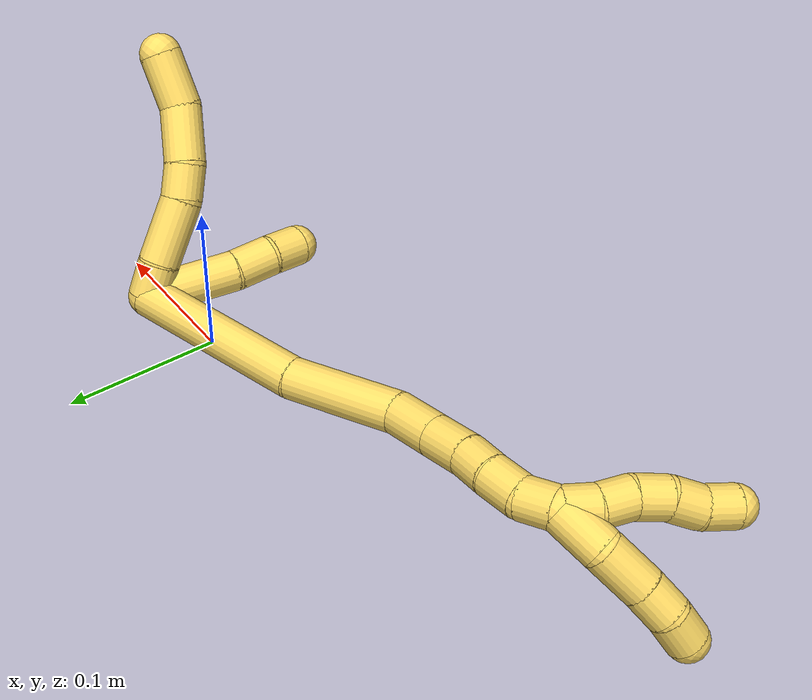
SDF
<sdf version="1.7">
 <world name="default">
  <model name="photoneo_s_sensor">
   <static>1</static>
   <pose>0 0 2 1.57079 1.57079 3.14159</pose>
   <link name="link">
    <inertial><mass>0.1</mass></inertial>
    <sensor name="sensor" type="depth">
     <update_rate>30</update_rate>
     <camera>
      <horizontal_fov>1.22</horizontal_fov>
      <image><width>1920</width><height>1200</height><format>B8G8R8</format></image>
      <clip><near>0.1</near><far>4</far></clip>
      <depth_camera><output>points</output></depth_camera>
     </camera>
     <plugin name="camera_plugin" filename="libgazebo_ros_depth_camera.so">
      <baseline>0.2</baseline>
      <alwaysOn>1</alwaysOn>
      <updateRate>0.0</updateRate>
      <cameraName>camera_ir</cameraName>
      <imageTopicName>/camera/color/image_raw</imageTopicName>
      <cameraInfoTopicName>/camera/color/camera_info</cameraInfoTopicName>
      <depthImageTopicName>/camera/depth/image_raw</depthImageTopicName>
      <depthImageCameraInfoTopicName>/camera/depth/camera_info</depthImageCameraInfoTopicName>
      <pointCloudTopicName>/camera/depth/points</pointCloudTopicName>
      <frameName>fr_optical</frameName>
      <pointCloudCutoff>0.1</pointCloudCutoff>
      <pointCloudCutoffMax>2.0</pointCloudCutoffMax>
      <distortionK1>0</distortionK1>
      <distortionK2>0</distortionK2>
      <distortionK3>0</distortionK3>
      <distortionT1>0</distortionT1>
      <distortionT2>0</distortionT2>
      <CxPrime>0</CxPrime>
      <Cx>0</Cx>
      <Cy>0</Cy>
      <focalLength>0</focalLength>
      <hackBaseline>0</hackBaseline>
     </plugin>
    </sensor>
   </link>
  </model>
  <model name="bin">
   <static>1</static>
   <link name="bottom">
    <collision name="collision-bottom">
     <pose>0 0 -0.01 0 -0 0</pose>
     <geometry><box><size>0.8 0.6 0.02</size></box></geometry>
     <surface>
      <friction><ode><mu>100</mu><mu2>100</mu2></ode></friction>
      <contact><collide_bitmask>65535</collide_bitmask></contact>
     </surface>
    </collision>
   </link>
   <link name="west_wall">
    <collision name="collision-west_wall">
     <pose>-0.41 0 0.1 0 -0 0</pose>
     <geometry><box><size>0.02 0.6 0.2</size></box></geometry>
     <surface>
      <friction><ode><mu>100</mu><mu2>100</mu2></ode></friction>
      <contact><collide_bitmask>65535</collide_bitmask></contact>
     </surface>
    </collision>
   </link>
   <link name="east_wall">
    <collision name="collision-east_wall">
     <pose>0.41 0 0.1 0 -0 0</pose>
     <geometry><box><size>0.02 0.6 0.2</size></box></geometry>
     <surface>
      <friction><ode><mu>100</mu><mu2>100</mu2></ode></friction>
      <contact><collide_bitmask>65535</collide_bitmask></contact>
     </surface>
    </collision>
   </link>
   <link name="south_wall">
    <collision name="collision-south_wall">
     <pose>0 -0.31 0.1 0 -0 0</pose>
     <geometry><box><size>0.8 0.02 0.2</size></box></geometry>
     <surface>
      <friction><ode><mu>100</mu><mu2>100</mu2></ode></friction>
      <contact><collide_bitmask>65535</collide_bitmask></contact>
     </surface>
    </collision>
   </link>
   <link name="north_wall">
    <collision name="collision-north_wall">
     <pose>0 0.31 0.1 0 -0 0</pose>
     <geometry><box><size>0.8 0.02 0.2</size></box></geometry>
     <surface>
      <friction><ode><mu>100</mu><mu2>100</mu2></ode></friction>
      <contact><collide_bitmask>65535</collide_bitmask></contact>
     </surface>
    </collision>
   </link>
  </model>
  <model name="5">
   <static>0</static>
   <link name="5">
    <collision name="collision-cylinder-e_1_2_8">
     <pose>0.001269 0.010285 -0.002457 -1.80531 0.119422 -0.151205</pose>
     <geometry><cylinder><radius>0.0125</radius><length>0.021301</length></cylinder></geometry>
     <surface>
      <friction><ode><mu>1.16</mu><mu2>1.16</mu2><slip1>0</slip1><slip2>0</slip2></ode></friction>
      <contact><ode><kp>1e+06</kp><kd>1</kd><max_vel>0</max_vel><min_depth>0.001</min_depth></ode></contact>
     </surface>
    </collision>
    <visual name="visual-cylinder-e_1_2_8">
     <pose>0.001269 0.010285 -0.002457 -1.80531 0.119422 -0.151205</pose>
     <geometry><cylinder><radius>0.0125</radius><length>0.021301</length></cylinder></geometry>
     <material><ambient>1 0.858824 0.4 1</ambient></material>
    </visual>
    <collision name="collision-cylinder-e_2_8_9">
     <pose>0.007704 0.039444 -0.009522 -1.81024 0.259909 -0.329845</pose>
     <geometry><cylinder><radius>0.0125</radius><length>0.040206</length></cylinder></geometry>
     <surface>
      <friction><ode><mu>1.16</mu><mu2>1.16</mu2><slip1>0</slip1><slip2>0</slip2></ode></friction>
      <contact><ode><kp>1e+06</kp><kd>1</kd><max_vel>0</max_vel><min_depth>0.001</min_depth></ode></contact>
     </surface>
    </collision>
    <visual name="visual-cylinder-e_2_8_9">
     <pose>0.007704 0.039444 -0.009522 -1.81024 0.259909 -0.329845</pose>
     <geometry><cylinder><radius>0.0125</radius><length>0.040206</length></cylinder></geometry>
     <material><ambient>1 0.858824 0.4 1</ambient></material>
    </visual>
    <collision name="collision-cylinder-e_3_9_10">
     <pose>0.015388 0.067376 -0.019039 -2.06747 0.239664 -0.399052</pose>
     <geometry><cylinder><radius>0.0125</radius><length>0.021213</length></cylinder></geometry>
     <surface>
      <friction><ode><mu>1.16</mu><mu2>1.16</mu2><slip1>0</slip1><slip2>0</slip2></ode></friction>
      <contact><ode><kp>1e+06</kp><kd>1</kd><max_vel>0</max_vel><min_depth>0.001</min_depth></ode></contact>
     </surface>
    </collision>
    <visual name="visual-cylinder-e_3_9_10">
     <pose>0.015388 0.067376 -0.019039 -2.06747 0.239664 -0.399052</pose>
     <geometry><cylinder><radius>0.0125</radius><length>0.021213</length></cylinder></geometry>
     <material><ambient>1 0.858824 0.4 1</ambient></material>
    </visual>
    <collision name="collision-cylinder-e_4_10_11">
     <pose>0.02266 0.088641 -0.03498 -2.30564 0.281279 -0.617146</pose>
     <geometry><cylinder><radius>0.0125</radius><length>0.034252</length></cylinder></geometry>
     <surface>
      <friction><ode><mu>1.16</mu><mu2>1.16</mu2><slip1>0</slip1><slip2>0</slip2></ode></friction>
      <contact><ode><kp>1e+06</kp><kd>1</kd><max_vel>0</max_vel><min_depth>0.001</min_depth></ode></contact>
     </surface>
    </collision>
    <visual name="visual-cylinder-e_4_10_11">
     <pose>0.02266 0.088641 -0.03498 -2.30564 0.281279 -0.617146</pose>
     <geometry><cylinder><radius>0.0125</radius><length>0.034252</length></cylinder></geometry>
     <material><ambient>1 0.858824 0.4 1</ambient></material>
    </visual>
    <collision name="collision-cylinder-e_5_11_6">
     <pose>0.027082 0.111149 -0.058915 -2.46794 -0.020086 0.057346</pose>
     <geometry><cylinder><radius>0.0125</radius><length>0.033028</length></cylinder></geometry>
     <surface>
      <friction><ode><mu>1.16</mu><mu2>1.16</mu2><slip1>0</slip1><slip2>0</slip2></ode></friction>
      <contact><ode><kp>1e+06</kp><kd>1</kd><max_vel>0</max_vel><min_depth>0.001</min_depth></ode></contact>
     </surface>
    </collision>
    <visual name="visual-cylinder-e_5_11_6">
     <pose>0.027082 0.111149 -0.058915 -2.46794 -0.020086 0.057346</pose>
     <geometry><cylinder><radius>0.0125</radius><length>0.033028</length></cylinder></geometry>
     <material><ambient>1 0.858824 0.4 1</ambient></material>
    </visual>
    <collision name="collision-cylinder-e_1_2_12">
     <pose>0.018153 0.014587 0.01432 -0.794636 0.726171 -0.316203</pose>
     <geometry><cylinder><radius>0.0125</radius><length>0.054677</length></cylinder></geometry>
     <surface>
      <friction><ode><mu>1.16</mu><mu2>1.16</mu2><slip1>0</slip1><slip2>0</slip2></ode></friction>
      <contact><ode><kp>1e+06</kp><kd>1</kd><max_vel>0</max_vel><min_depth>0.001</min_depth></ode></contact>
     </surface>
    </collision>
    <visual name="visual-cylinder-e_1_2_12">
     <pose>0.018153 0.014587 0.01432 -0.794636 0.726171 -0.316203</pose>
     <geometry><cylinder><radius>0.0125</radius><length>0.054677</length></cylinder></geometry>
     <material><ambient>1 0.858824 0.4 1</ambient></material>
    </visual>
    <collision name="collision-cylinder-e_2_12_13">
     <pose>0.045388 0.035912 0.033442 -0.951608 0.831938 -0.447627</pose>
     <geometry><cylinder><radius>0.0125</radius><length>0.024572</length></cylinder></geometry>
     <surface>
      <friction><ode><mu>1.16</mu><mu2>1.16</mu2><slip1>0</slip1><slip2>0</slip2></ode></friction>
      <contact><ode><kp>1e+06</kp><kd>1</kd><max_vel>0</max_vel><min_depth>0.001</min_depth></ode></contact>
     </surface>
    </collision>
    <visual name="visual-cylinder-e_2_12_13">
     <pose>0.045388 0.035912 0.033442 -0.951608 0.831938 -0.447627</pose>
     <geometry><cylinder><radius>0.0125</radius><length>0.024572</length></cylinder></geometry>
     <material><ambient>1 0.858824 0.4 1</ambient></material>
    </visual>
    <collision name="collision-cylinder-e_3_13_5">
     <pose>0.063331 0.046724 0.041786 -0.855082 1.02365 -0.501169</pose>
     <geometry><cylinder><radius>0.0125</radius><length>0.020751</length></cylinder></geometry>
     <surface>
      <friction><ode><mu>1.16</mu><mu2>1.16</mu2><slip1>0</slip1><slip2>0</slip2></ode></friction>
      <contact><ode><kp>1e+06</kp><kd>1</kd><max_vel>0</max_vel><min_depth>0.001</min_depth></ode></contact>
     </surface>
    </collision>
    <visual name="visual-cylinder-e_3_13_5">
     <pose>0.063331 0.046724 0.041786 -0.855082 1.02365 -0.501169</pose>
     <geometry><cylinder><radius>0.0125</radius><length>0.020751</length></cylinder></geometry>
     <material><ambient>1 0.858824 0.4 1</ambient></material>
    </visual>
    <collision name="collision-cylinder-e_1_2_14">
     <pose>-0.011848 0.011912 0.053375 -0.21958 -0.213343 0.023606</pose>
     <geometry><cylinder><radius>0.0125</radius><length>0.111913</length></cylinder></geometry>
     <surface>
      <friction><ode><mu>1.16</mu><mu2>1.16</mu2><slip1>0</slip1><slip2>0</slip2></ode></friction>
      <contact><ode><kp>1e+06</kp><kd>1</kd><max_vel>0</max_vel><min_depth>0.001</min_depth></ode></contact>
     </surface>
    </collision>
    <visual name="visual-cylinder-e_1_2_14">
     <pose>-0.011848 0.011912 0.053375 -0.21958 -0.213343 0.023606</pose>
     <geometry><cylinder><radius>0.0125</radius><length>0.111913</length></cylinder></geometry>
     <material><ambient>1 0.858824 0.4 1</ambient></material>
    </visual>
    <collision name="collision-cylinder-e_2_14_15">
     <pose>-0.028131 0.036538 0.138499 -0.380902 -0.12899 0.024901</pose>
     <geometry><cylinder><radius>0.0125</radius><length>0.068974</length></cylinder></geometry>
     <surface>
      <friction><ode><mu>1.16</mu><mu2>1.16</mu2><slip1>0</slip1><slip2>0</slip2></ode></friction>
      <contact><ode><kp>1e+06</kp><kd>1</kd><max_vel>0</max_vel><min_depth>0.001</min_depth></ode></contact>
     </surface>
    </collision>
    <visual name="visual-cylinder-e_2_14_15">
     <pose>-0.028131 0.036538 0.138499 -0.380902 -0.12899 0.024901</pose>
     <geometry><cylinder><radius>0.0125</radius><length>0.068974</length></cylinder></geometry>
     <material><ambient>1 0.858824 0.4 1</ambient></material>
    </visual>
    <collision name="collision-cylinder-e_3_15_16">
     <pose>-0.038809 0.053254 0.183251 -0.298541 -0.43014 0.065681</pose>
     <geometry><cylinder><radius>0.0125</radius><length>0.029936</length></cylinder></geometry>
     <surface>
      <friction><ode><mu>1.16</mu><mu2>1.16</mu2><slip1>0</slip1><slip2>0</slip2></ode></friction>
      <contact><ode><kp>1e+06</kp><kd>1</kd><max_vel>0</max_vel><min_depth>0.001</min_depth></ode></contact>
     </surface>
    </collision>
    <visual name="visual-cylinder-e_3_15_16">
     <pose>-0.038809 0.053254 0.183251 -0.298541 -0.43014 0.065681</pose>
     <geometry><cylinder><radius>0.0125</radius><length>0.029936</length></cylinder></geometry>
     <material><ambient>1 0.858824 0.4 1</ambient></material>
    </visual>
    <collision name="collision-cylinder-e_4_16_17">
     <pose>-0.050734 0.060919 0.206933 -0.330442 -0.466318 0.079153</pose>
     <geometry><cylinder><radius>0.0125</radius><length>0.02528</length></cylinder></geometry>
     <surface>
      <friction><ode><mu>1.16</mu><mu2>1.16</mu2><slip1>0</slip1><slip2>0</slip2></ode></friction>
      <contact><ode><kp>1e+06</kp><kd>1</kd><max_vel>0</max_vel><min_depth>0.001</min_depth></ode></contact>
     </surface>
    </collision>
    <visual name="visual-cylinder-e_4_16_17">
     <pose>-0.050734 0.060919 0.206933 -0.330442 -0.466318 0.079153</pose>
     <geometry><cylinder><radius>0.0125</radius><length>0.02528</length></cylinder></geometry>
     <material><ambient>1 0.858824 0.4 1</ambient></material>
    </visual>
    <collision name="collision-cylinder-e_5_17_18">
     <pose>-0.061793 0.066561 0.22599 -0.231885 -0.558281 0.066738</pose>
     <geometry><cylinder><radius>0.0125</radius><length>0.020298</length></cylinder></geometry>
     <surface>
      <friction><ode><mu>1.16</mu><mu2>1.16</mu2><slip1>0</slip1><slip2>0</slip2></ode></friction>
      <contact><ode><kp>1e+06</kp><kd>1</kd><max_vel>0</max_vel><min_depth>0.001</min_depth></ode></contact>
     </surface>
    </collision>
    <visual name="visual-cylinder-e_5_17_18">
     <pose>-0.061793 0.066561 0.22599 -0.231885 -0.558281 0.066738</pose>
     <geometry><cylinder><radius>0.0125</radius><length>0.020298</length></cylinder></geometry>
     <material><ambient>1 0.858824 0.4 1</ambient></material>
    </visual>
    <collision name="collision-cylinder-e_6_18_19">
     <pose>-0.071949 0.070747 0.244395 -0.21677 -0.435669 0.048161</pose>
     <geometry><cylinder><radius>0.0125</radius><length>0.022651</length></cylinder></geometry>
     <surface>
      <friction><ode><mu>1.16</mu><mu2>1.16</mu2><slip1>0</slip1><slip2>0</slip2></ode></friction>
      <contact><ode><kp>1e+06</kp><kd>1</kd><max_vel>0</max_vel><min_depth>0.001</min_depth></ode></contact>
     </surface>
    </collision>
    <visual name="visual-cylinder-e_6_18_19">
     <pose>-0.071949 0.070747 0.244395 -0.21677 -0.435669 0.048161</pose>
     <geometry><cylinder><radius>0.0125</radius><length>0.022651</length></cylinder></geometry>
     <material><ambient>1 0.858824 0.4 1</ambient></material>
    </visual>
    <collision name="collision-cylinder-e_7_19_1">
     <pose>-0.07872 0.077411 0.26369 -0.448207 -0.191367 0.043745</pose>
     <geometry><cylinder><radius>0.0125</radius><length>0.020948</length></cylinder></geometry>
     <surface>
      <friction><ode><mu>1.16</mu><mu2>1.16</mu2><slip1>0</slip1><slip2>0</slip2></ode></friction>
      <contact><ode><kp>1e+06</kp><kd>1</kd><max_vel>0</max_vel><min_depth>0.001</min_depth></ode></contact>
     </surface>
    </collision>
    <visual name="visual-cylinder-e_7_19_1">
     <pose>-0.07872 0.077411 0.26369 -0.448207 -0.191367 0.043745</pose>
     <geometry><cylinder><radius>0.0125</radius><length>0.020948</length></cylinder></geometry>
     <material><ambient>1 0.858824 0.4 1</ambient></material>
    </visual>
    <collision name="collision-cylinder-e_1_1_20">
     <pose>-0.080949 0.07979 0.287339 0.143469 -0.016248 -0.001168</pose>
     <geometry><cylinder><radius>0.0125</radius><length>0.029067</length></cylinder></geometry>
     <surface>
      <friction><ode><mu>1.16</mu><mu2>1.16</mu2><slip1>0</slip1><slip2>0</slip2></ode></friction>
      <contact><ode><kp>1e+06</kp><kd>1</kd><max_vel>0</max_vel><min_depth>0.001</min_depth></ode></contact>
     </surface>
    </collision>
    <visual name="visual-cylinder-e_1_1_20">
     <pose>-0.080949 0.07979 0.287339 0.143469 -0.016248 -0.001168</pose>
     <geometry><cylinder><radius>0.0125</radius><length>0.029067</length></cylinder></geometry>
     <material><ambient>1 0.858824 0.4 1</ambient></material>
    </visual>
    <collision name="collision-cylinder-e_2_20_21">
     <pose>-0.077156 0.073623 0.315664 0.2853 0.270471 0.03908</pose>
     <geometry><cylinder><radius>0.0125</radius><length>0.030155</length></cylinder></geometry>
     <surface>
      <friction><ode><mu>1.16</mu><mu2>1.16</mu2><slip1>0</slip1><slip2>0</slip2></ode></friction>
      <contact><ode><kp>1e+06</kp><kd>1</kd><max_vel>0</max_vel><min_depth>0.001</min_depth></ode></contact>
     </surface>
    </collision>
    <visual name="visual-cylinder-e_2_20_21">
     <pose>-0.077156 0.073623 0.315664 0.2853 0.270471 0.03908</pose>
     <geometry><cylinder><radius>0.0125</radius><length>0.030155</length></cylinder></geometry>
     <material><ambient>1 0.858824 0.4 1</ambient></material>
    </visual>
    <collision name="collision-cylinder-e_3_21_22">
     <pose>-0.070717 0.066265 0.338846 0.339986 0.241165 0.041592</pose>
     <geometry><cylinder><radius>0.0125</radius><length>0.020188</length></cylinder></geometry>
     <surface>
      <friction><ode><mu>1.16</mu><mu2>1.16</mu2><slip1>0</slip1><slip2>0</slip2></ode></friction>
      <contact><ode><kp>1e+06</kp><kd>1</kd><max_vel>0</max_vel><min_depth>0.001</min_depth></ode></contact>
     </surface>
    </collision>
    <visual name="visual-cylinder-e_3_21_22">
     <pose>-0.070717 0.066265 0.338846 0.339986 0.241165 0.041592</pose>
     <geometry><cylinder><radius>0.0125</radius><length>0.020188</length></cylinder></geometry>
     <material><ambient>1 0.858824 0.4 1</ambient></material>
    </visual>
    <collision name="collision-cylinder-e_4_22_4">
     <pose>-0.06415 0.058058 0.356107 0.551939 0.415542 0.119261</pose>
     <geometry><cylinder><radius>0.0125</radius><length>0.02059</length></cylinder></geometry>
     <surface>
      <friction><ode><mu>1.16</mu><mu2>1.16</mu2><slip1>0</slip1><slip2>0</slip2></ode></friction>
      <contact><ode><kp>1e+06</kp><kd>1</kd><max_vel>0</max_vel><min_depth>0.001</min_depth></ode></contact>
     </surface>
    </collision>
    <visual name="visual-cylinder-e_4_22_4">
     <pose>-0.06415 0.058058 0.356107 0.551939 0.415542 0.119261</pose>
     <geometry><cylinder><radius>0.0125</radius><length>0.02059</length></cylinder></geometry>
     <material><ambient>1 0.858824 0.4 1</ambient></material>
    </visual>
    <collision name="collision-cylinder-e_1_1_23">
     <pose>-0.075356 0.085961 0.280342 -0.506112 0.56534 -0.149938</pose>
     <geometry><cylinder><radius>0.0125</radius><length>0.02</length></cylinder></geometry>
     <surface>
      <friction><ode><mu>1.16</mu><mu2>1.16</mu2><slip1>0</slip1><slip2>0</slip2></ode></friction>
      <contact><ode><kp>1e+06</kp><kd>1</kd><max_vel>0</max_vel><min_depth>0.001</min_depth></ode></contact>
     </surface>
    </collision>
    <visual name="visual-cylinder-e_1_1_23">
     <pose>-0.075356 0.085961 0.280342 -0.506112 0.56534 -0.149938</pose>
     <geometry><cylinder><radius>0.0125</radius><length>0.02</length></cylinder></geometry>
     <material><ambient>1 0.858824 0.4 1</ambient></material>
    </visual>
    <collision name="collision-cylinder-e_2_23_24">
     <pose>-0.063335 0.094802 0.293478 -0.690149 0.729335 -0.272735</pose>
     <geometry><cylinder><radius>0.0125</radius><length>0.02</length></cylinder></geometry>
     <surface>
      <friction><ode><mu>1.16</mu><mu2>1.16</mu2><slip1>0</slip1><slip2>0</slip2></ode></friction>
      <contact><ode><kp>1e+06</kp><kd>1</kd><max_vel>0</max_vel><min_depth>0.001</min_depth></ode></contact>
     </surface>
    </collision>
    <visual name="visual-cylinder-e_2_23_24">
     <pose>-0.063335 0.094802 0.293478 -0.690149 0.729335 -0.272735</pose>
     <geometry><cylinder><radius>0.0125</radius><length>0.02</length></cylinder></geometry>
     <material><ambient>1 0.858824 0.4 1</ambient></material>
    </visual>
    <collision name="collision-cylinder-e_3_24_25">
     <pose>-0.0511 0.102719 0.306903 -0.391774 0.59092 -0.120646</pose>
     <geometry><cylinder><radius>0.0125</radius><length>0.02</length></cylinder></geometry>
     <surface>
      <friction><ode><mu>1.16</mu><mu2>1.16</mu2><slip1>0</slip1><slip2>0</slip2></ode></friction>
      <contact><ode><kp>1e+06</kp><kd>1</kd><max_vel>0</max_vel><min_depth>0.001</min_depth></ode></contact>
     </surface>
    </collision>
    <visual name="visual-cylinder-e_3_24_25">
     <pose>-0.0511 0.102719 0.306903 -0.391774 0.59092 -0.120646</pose>
     <geometry><cylinder><radius>0.0125</radius><length>0.02</length></cylinder></geometry>
     <material><ambient>1 0.858824 0.4 1</ambient></material>
    </visual>
    <collision name="collision-cylinder-e_4_25_26">
     <pose>-0.040177 0.106645 0.322992 -0.089508 0.564683 -0.025981</pose>
     <geometry><cylinder><radius>0.0125</radius><length>0.02</length></cylinder></geometry>
     <surface>
      <friction><ode><mu>1.16</mu><mu2>1.16</mu2><slip1>0</slip1><slip2>0</slip2></ode></friction>
      <contact><ode><kp>1e+06</kp><kd>1</kd><max_vel>0</max_vel><min_depth>0.001</min_depth></ode></contact>
     </surface>
    </collision>
    <visual name="visual-cylinder-e_4_25_26">
     <pose>-0.040177 0.106645 0.322992 -0.089508 0.564683 -0.025981</pose>
     <geometry><cylinder><radius>0.0125</radius><length>0.02</length></cylinder></geometry>
     <material><ambient>1 0.858824 0.4 1</ambient></material>
    </visual>
    <collision name="collision-cylinder-e_5_26_3">
     <pose>-0.028956 0.110816 0.338746 -0.435487 0.627294 -0.143282</pose>
     <geometry><cylinder><radius>0.0125</radius><length>0.02</length></cylinder></geometry>
     <surface>
      <friction><ode><mu>1.16</mu><mu2>1.16</mu2><slip1>0</slip1><slip2>0</slip2></ode></friction>
      <contact><ode><kp>1e+06</kp><kd>1</kd><max_vel>0</max_vel><min_depth>0.001</min_depth></ode></contact>
     </surface>
    </collision>
    <visual name="visual-cylinder-e_5_26_3">
     <pose>-0.028956 0.110816 0.338746 -0.435487 0.627294 -0.143282</pose>
     <geometry><cylinder><radius>0.0125</radius><length>0.02</length></cylinder></geometry>
     <material><ambient>1 0.858824 0.4 1</ambient></material>
    </visual>
    <collision name="collision-sphere-3">
     <pose>-0.023086 0.114231 0.346086 0 -0 0</pose>
     <geometry><sphere><radius>0.0125</radius></sphere></geometry>
     <surface>
      <friction><ode><mu>1.16</mu><mu2>1.16</mu2><slip1>0</slip1><slip2>0</slip2></ode></friction>
      <contact><ode><kp>1e+06</kp><kd>1</kd><max_vel>0</max_vel><min_depth>0.001</min_depth></ode></contact>
     </surface>
    </collision>
    <visual name="visual-sphere-3">
     <pose>-0.023086 0.114231 0.346086 0 -0 0</pose>
     <geometry><sphere><radius>0.0125</radius></sphere></geometry>
     <material><ambient>1 0.858824 0.4 1</ambient></material>
    </visual>
    <collision name="collision-sphere-26">
     <pose>-0.034826 0.1074 0.331405 0 -0 0</pose>
     <geometry><sphere><radius>0.0125</radius></sphere></geometry>
     <surface>
      <friction><ode><mu>1.16</mu><mu2>1.16</mu2><slip1>0</slip1><slip2>0</slip2></ode></friction>
      <contact><ode><kp>1e+06</kp><kd>1</kd><max_vel>0</max_vel><min_depth>0.001</min_depth></ode></contact>
     </surface>
    </collision>
    <visual name="visual-sphere-26">
     <pose>-0.034826 0.1074 0.331405 0 -0 0</pose>
     <geometry><sphere><radius>0.0125</radius></sphere></geometry>
     <material><ambient>1 0.858824 0.4 1</ambient></material>
    </visual>
    <collision name="collision-sphere-25">
     <pose>-0.045529 0.10589 0.314578 0 -0 0</pose>
     <geometry><sphere><radius>0.0125</radius></sphere></geometry>
     <surface>
      <friction><ode><mu>1.16</mu><mu2>1.16</mu2><slip1>0</slip1><slip2>0</slip2></ode></friction>
      <contact><ode><kp>1e+06</kp><kd>1</kd><max_vel>0</max_vel><min_depth>0.001</min_depth></ode></contact>
     </surface>
    </collision>
    <visual name="visual-sphere-25">
     <pose>-0.045529 0.10589 0.314578 0 -0 0</pose>
     <geometry><sphere><radius>0.0125</radius></sphere></geometry>
     <material><ambient>1 0.858824 0.4 1</ambient></material>
    </visual>
    <collision name="collision-sphere-24">
     <pose>-0.056671 0.099549 0.299228 0 -0 0</pose>
     <geometry><sphere><radius>0.0125</radius></sphere></geometry>
     <surface>
      <friction><ode><mu>1.16</mu><mu2>1.16</mu2><slip1>0</slip1><slip2>0</slip2></ode></friction>
      <contact><ode><kp>1e+06</kp><kd>1</kd><max_vel>0</max_vel><min_depth>0.001</min_depth></ode></contact>
     </surface>
    </collision>
    <visual name="visual-sphere-24">
     <pose>-0.056671 0.099549 0.299228 0 -0 0</pose>
     <geometry><sphere><radius>0.0125</radius></sphere></geometry>
     <material><ambient>1 0.858824 0.4 1</ambient></material>
    </visual>
    <collision name="collision-sphere-23">
     <pose>-0.069999 0.090055 0.287728 0 -0 0</pose>
     <geometry><sphere><radius>0.0125</radius></sphere></geometry>
     <surface>
      <friction><ode><mu>1.16</mu><mu2>1.16</mu2><slip1>0</slip1><slip2>0</slip2></ode></friction>
      <contact><ode><kp>1e+06</kp><kd>1</kd><max_vel>0</max_vel><min_depth>0.001</min_depth></ode></contact>
     </surface>
    </collision>
    <visual name="visual-sphere-23">
     <pose>-0.069999 0.090055 0.287728 0 -0 0</pose>
     <geometry><sphere><radius>0.0125</radius></sphere></geometry>
     <material><ambient>1 0.858824 0.4 1</ambient></material>
    </visual>
    <collision name="collision-sphere-4">
     <pose>-0.059994 0.053119 0.364128 0 -0 0</pose>
     <geometry><sphere><radius>0.0125</radius></sphere></geometry>
     <surface>
      <friction><ode><mu>1.16</mu><mu2>1.16</mu2><slip1>0</slip1><slip2>0</slip2></ode></friction>
      <contact><ode><kp>1e+06</kp><kd>1</kd><max_vel>0</max_vel><min_depth>0.001</min_depth></ode></contact>
     </surface>
    </collision>
    <visual name="visual-sphere-4">
     <pose>-0.059994 0.053119 0.364128 0 -0 0</pose>
     <geometry><sphere><radius>0.0125</radius></sphere></geometry>
     <material><ambient>1 0.858824 0.4 1</ambient></material>
    </visual>
    <collision name="collision-sphere-22">
     <pose>-0.068306 0.062996 0.348087 0 -0 0</pose>
     <geometry><sphere><radius>0.0125</radius></sphere></geometry>
     <surface>
      <friction><ode><mu>1.16</mu><mu2>1.16</mu2><slip1>0</slip1><slip2>0</slip2></ode></friction>
      <contact><ode><kp>1e+06</kp><kd>1</kd><max_vel>0</max_vel><min_depth>0.001</min_depth></ode></contact>
     </surface>
    </collision>
    <visual name="visual-sphere-22">
     <pose>-0.068306 0.062996 0.348087 0 -0 0</pose>
     <geometry><sphere><radius>0.0125</radius></sphere></geometry>
     <material><ambient>1 0.858824 0.4 1</ambient></material>
    </visual>
    <collision name="collision-sphere-21">
     <pose>-0.073128 0.069534 0.329606 0 -0 0</pose>
     <geometry><sphere><radius>0.0125</radius></sphere></geometry>
     <surface>
      <friction><ode><mu>1.16</mu><mu2>1.16</mu2><slip1>0</slip1><slip2>0</slip2></ode></friction>
      <contact><ode><kp>1e+06</kp><kd>1</kd><max_vel>0</max_vel><min_depth>0.001</min_depth></ode></contact>
     </surface>
    </collision>
    <visual name="visual-sphere-21">
     <pose>-0.073128 0.069534 0.329606 0 -0 0</pose>
     <geometry><sphere><radius>0.0125</radius></sphere></geometry>
     <material><ambient>1 0.858824 0.4 1</ambient></material>
    </visual>
    <collision name="collision-sphere-20">
     <pose>-0.081185 0.077712 0.301722 0 -0 0</pose>
     <geometry><sphere><radius>0.0125</radius></sphere></geometry>
     <surface>
      <friction><ode><mu>1.16</mu><mu2>1.16</mu2><slip1>0</slip1><slip2>0</slip2></ode></friction>
      <contact><ode><kp>1e+06</kp><kd>1</kd><max_vel>0</max_vel><min_depth>0.001</min_depth></ode></contact>
     </surface>
    </collision>
    <visual name="visual-sphere-20">
     <pose>-0.081185 0.077712 0.301722 0 -0 0</pose>
     <geometry><sphere><radius>0.0125</radius></sphere></geometry>
     <material><ambient>1 0.858824 0.4 1</ambient></material>
    </visual>
    <collision name="collision-sphere-6">
     <pose>0.02675 0.121449 -0.071819 0 -0 0</pose>
     <geometry><sphere><radius>0.0125</radius></sphere></geometry>
     <surface>
      <friction><ode><mu>1.16</mu><mu2>1.16</mu2><slip1>0</slip1><slip2>0</slip2></ode></friction>
      <contact><ode><kp>1e+06</kp><kd>1</kd><max_vel>0</max_vel><min_depth>0.001</min_depth></ode></contact>
     </surface>
    </collision>
    <visual name="visual-sphere-6">
     <pose>0.02675 0.121449 -0.071819 0 -0 0</pose>
     <geometry><sphere><radius>0.0125</radius></sphere></geometry>
     <material><ambient>1 0.858824 0.4 1</ambient></material>
    </visual>
    <collision name="collision-sphere-11">
     <pose>0.027414 0.100849 -0.046011 0 -0 0</pose>
     <geometry><sphere><radius>0.0125</radius></sphere></geometry>
     <surface>
      <friction><ode><mu>1.16</mu><mu2>1.16</mu2><slip1>0</slip1><slip2>0</slip2></ode></friction>
      <contact><ode><kp>1e+06</kp><kd>1</kd><max_vel>0</max_vel><min_depth>0.001</min_depth></ode></contact>
     </surface>
    </collision>
    <visual name="visual-sphere-11">
     <pose>0.027414 0.100849 -0.046011 0 -0 0</pose>
     <geometry><sphere><radius>0.0125</radius></sphere></geometry>
     <material><ambient>1 0.858824 0.4 1</ambient></material>
    </visual>
    <collision name="collision-sphere-10">
     <pose>0.017906 0.076434 -0.023949 0 -0 0</pose>
     <geometry><sphere><radius>0.0125</radius></sphere></geometry>
     <surface>
      <friction><ode><mu>1.16</mu><mu2>1.16</mu2><slip1>0</slip1><slip2>0</slip2></ode></friction>
      <contact><ode><kp>1e+06</kp><kd>1</kd><max_vel>0</max_vel><min_depth>0.001</min_depth></ode></contact>
     </surface>
    </collision>
    <visual name="visual-sphere-10">
     <pose>0.017906 0.076434 -0.023949 0 -0 0</pose>
     <geometry><sphere><radius>0.0125</radius></sphere></geometry>
     <material><ambient>1 0.858824 0.4 1</ambient></material>
    </visual>
    <collision name="collision-sphere-9">
     <pose>0.01287 0.058318 -0.01413 0 -0 0</pose>
     <geometry><sphere><radius>0.0125</radius></sphere></geometry>
     <surface>
      <friction><ode><mu>1.16</mu><mu2>1.16</mu2><slip1>0</slip1><slip2>0</slip2></ode></friction>
      <contact><ode><kp>1e+06</kp><kd>1</kd><max_vel>0</max_vel><min_depth>0.001</min_depth></ode></contact>
     </surface>
    </collision>
    <visual name="visual-sphere-9">
     <pose>0.01287 0.058318 -0.01413 0 -0 0</pose>
     <geometry><sphere><radius>0.0125</radius></sphere></geometry>
     <material><ambient>1 0.858824 0.4 1</ambient></material>
    </visual>
    <collision name="collision-sphere-2">
     <geometry><sphere><radius>0.0125</radius></sphere></geometry>
     <surface>
      <friction><ode><mu>1.16</mu><mu2>1.16</mu2><slip1>0</slip1><slip2>0</slip2></ode></friction>
      <contact><ode><kp>1e+06</kp><kd>1</kd><max_vel>0</max_vel><min_depth>0.001</min_depth></ode></contact>
     </surface>
    </collision>
    <visual name="visual-sphere-2">
     <geometry><sphere><radius>0.0125</radius></sphere></geometry>
     <material><ambient>1 0.858824 0.4 1</ambient></material>
    </visual>
    <collision name="collision-sphere-19">
     <pose>-0.076728 0.072955 0.254423 0 -0 0</pose>
     <geometry><sphere><radius>0.0125</radius></sphere></geometry>
     <surface>
      <friction><ode><mu>1.16</mu><mu2>1.16</mu2><slip1>0</slip1><slip2>0</slip2></ode></friction>
      <contact><ode><kp>1e+06</kp><kd>1</kd><max_vel>0</max_vel><min_depth>0.001</min_depth></ode></contact>
     </surface>
    </collision>
    <visual name="visual-sphere-19">
     <pose>-0.076728 0.072955 0.254423 0 -0 0</pose>
     <geometry><sphere><radius>0.0125</radius></sphere></geometry>
     <material><ambient>1 0.858824 0.4 1</ambient></material>
    </visual>
    <collision name="collision-sphere-8">
     <pose>0.002538 0.020571 -0.004915 0 -0 0</pose>
     <geometry><sphere><radius>0.0125</radius></sphere></geometry>
     <surface>
      <friction><ode><mu>1.16</mu><mu2>1.16</mu2><slip1>0</slip1><slip2>0</slip2></ode></friction>
      <contact><ode><kp>1e+06</kp><kd>1</kd><max_vel>0</max_vel><min_depth>0.001</min_depth></ode></contact>
     </surface>
    </collision>
    <visual name="visual-sphere-8">
     <pose>0.002538 0.020571 -0.004915 0 -0 0</pose>
     <geometry><sphere><radius>0.0125</radius></sphere></geometry>
     <material><ambient>1 0.858824 0.4 1</ambient></material>
    </visual>
    <collision name="collision-sphere-12">
     <pose>0.036306 0.029175 0.028641 0 -0 0</pose>
     <geometry><sphere><radius>0.0125</radius></sphere></geometry>
     <surface>
      <friction><ode><mu>1.16</mu><mu2>1.16</mu2><slip1>0</slip1><slip2>0</slip2></ode></friction>
      <contact><ode><kp>1e+06</kp><kd>1</kd><max_vel>0</max_vel><min_depth>0.001</min_depth></ode></contact>
     </surface>
    </collision>
    <visual name="visual-sphere-12">
     <pose>0.036306 0.029175 0.028641 0 -0 0</pose>
     <geometry><sphere><radius>0.0125</radius></sphere></geometry>
     <material><ambient>1 0.858824 0.4 1</ambient></material>
    </visual>
    <collision name="collision-sphere-13">
     <pose>0.054471 0.04265 0.038244 0 -0 0</pose>
     <geometry><sphere><radius>0.0125</radius></sphere></geometry>
     <surface>
      <friction><ode><mu>1.16</mu><mu2>1.16</mu2><slip1>0</slip1><slip2>0</slip2></ode></friction>
      <contact><ode><kp>1e+06</kp><kd>1</kd><max_vel>0</max_vel><min_depth>0.001</min_depth></ode></contact>
     </surface>
    </collision>
    <visual name="visual-sphere-13">
     <pose>0.054471 0.04265 0.038244 0 -0 0</pose>
     <geometry><sphere><radius>0.0125</radius></sphere></geometry>
     <material><ambient>1 0.858824 0.4 1</ambient></material>
    </visual>
    <collision name="collision-sphere-5">
     <pose>0.072192 0.050797 0.045328 0 -0 0</pose>
     <geometry><sphere><radius>0.0125</radius></sphere></geometry>
     <surface>
      <friction><ode><mu>1.16</mu><mu2>1.16</mu2><slip1>0</slip1><slip2>0</slip2></ode></friction>
      <contact><ode><kp>1e+06</kp><kd>1</kd><max_vel>0</max_vel><min_depth>0.001</min_depth></ode></contact>
     </surface>
    </collision>
    <visual name="visual-sphere-5">
     <pose>0.072192 0.050797 0.045328 0 -0 0</pose>
     <geometry><sphere><radius>0.0125</radius></sphere></geometry>
     <material><ambient>1 0.858824 0.4 1</ambient></material>
    </visual>
    <collision name="collision-sphere-14">
     <pose>-0.023695 0.023824 0.106749 0 -0 0</pose>
     <geometry><sphere><radius>0.0125</radius></sphere></geometry>
     <surface>
      <friction><ode><mu>1.16</mu><mu2>1.16</mu2><slip1>0</slip1><slip2>0</slip2></ode></friction>
      <contact><ode><kp>1e+06</kp><kd>1</kd><max_vel>0</max_vel><min_depth>0.001</min_depth></ode></contact>
     </surface>
    </collision>
    <visual name="visual-sphere-14">
     <pose>-0.023695 0.023824 0.106749 0 -0 0</pose>
     <geometry><sphere><radius>0.0125</radius></sphere></geometry>
     <material><ambient>1 0.858824 0.4 1</ambient></material>
    </visual>
    <collision name="collision-sphere-15">
     <pose>-0.032567 0.049253 0.170248 0 -0 0</pose>
     <geometry><sphere><radius>0.0125</radius></sphere></geometry>
     <surface>
      <friction><ode><mu>1.16</mu><mu2>1.16</mu2><slip1>0</slip1><slip2>0</slip2></ode></friction>
      <contact><ode><kp>1e+06</kp><kd>1</kd><max_vel>0</max_vel><min_depth>0.001</min_depth></ode></contact>
     </surface>
    </collision>
    <visual name="visual-sphere-15">
     <pose>-0.032567 0.049253 0.170248 0 -0 0</pose>
     <geometry><sphere><radius>0.0125</radius></sphere></geometry>
     <material><ambient>1 0.858824 0.4 1</ambient></material>
    </visual>
    <collision name="collision-sphere-16">
     <pose>-0.045051 0.057256 0.196253 0 -0 0</pose>
     <geometry><sphere><radius>0.0125</radius></sphere></geometry>
     <surface>
      <friction><ode><mu>1.16</mu><mu2>1.16</mu2><slip1>0</slip1><slip2>0</slip2></ode></friction>
      <contact><ode><kp>1e+06</kp><kd>1</kd><max_vel>0</max_vel><min_depth>0.001</min_depth></ode></contact>
     </surface>
    </collision>
    <visual name="visual-sphere-16">
     <pose>-0.045051 0.057256 0.196253 0 -0 0</pose>
     <geometry><sphere><radius>0.0125</radius></sphere></geometry>
     <material><ambient>1 0.858824 0.4 1</ambient></material>
    </visual>
    <collision name="collision-sphere-17">
     <pose>-0.056417 0.064582 0.217613 0 -0 0</pose>
     <geometry><sphere><radius>0.0125</radius></sphere></geometry>
     <surface>
      <friction><ode><mu>1.16</mu><mu2>1.16</mu2><slip1>0</slip1><slip2>0</slip2></ode></friction>
      <contact><ode><kp>1e+06</kp><kd>1</kd><max_vel>0</max_vel><min_depth>0.001</min_depth></ode></contact>
     </surface>
    </collision>
    <visual name="visual-sphere-17">
     <pose>-0.056417 0.064582 0.217613 0 -0 0</pose>
     <geometry><sphere><radius>0.0125</radius></sphere></geometry>
     <material><ambient>1 0.858824 0.4 1</ambient></material>
    </visual>
    <collision name="collision-sphere-18">
     <pose>-0.067169 0.068539 0.234368 0 -0 0</pose>
     <geometry><sphere><radius>0.0125</radius></sphere></geometry>
     <surface>
      <friction><ode><mu>1.16</mu><mu2>1.16</mu2><slip1>0</slip1><slip2>0</slip2></ode></friction>
      <contact><ode><kp>1e+06</kp><kd>1</kd><max_vel>0</max_vel><min_depth>0.001</min_depth></ode></contact>
     </surface>
    </collision>
    <visual name="visual-sphere-18">
     <pose>-0.067169 0.068539 0.234368 0 -0 0</pose>
     <geometry><sphere><radius>0.0125</radius></sphere></geometry>
     <material><ambient>1 0.858824 0.4 1</ambient></material>
    </visual>
    <collision name="collision-sphere-1">
     <pose>-0.080713 0.081868 0.272957 0 -0 0</pose>
     <geometry><sphere><radius>0.0125</radius></sphere></geometry>
     <surface>
      <friction><ode><mu>1.16</mu><mu2>1.16</mu2><slip1>0</slip1><slip2>0</slip2></ode></friction>
      <contact><ode><kp>1e+06</kp><kd>1</kd><max_vel>0</max_vel><min_depth>0.001</min_depth></ode></contact>
     </surface>
    </collision>
    <visual name="visual-sphere-1">
     <pose>-0.080713 0.081868 0.272957 0 -0 0</pose>
     <geometry><sphere><radius>0.0125</radius></sphere></geometry>
     <material><ambient>1 0.858824 0.4 1</ambient></material>
    </visual>
    <inertial>
     <pose>-0.022792 0.054993 0.137696 0 -0 0</pose>
     <mass>0.75</mass>
     <inertia>
      <ixx>0.000205</ixx>
      <ixy>0</ixy>
      <ixz>0</ixz>
      <iyy>0.000195</iyy>
      <iyz>0</iyz>
      <izz>-2.2e-05</izz>
     </inertia>
    </inertial>
   </link>
   <pose>-0.004599 0.041995 0.061036 1.93078 0.399859 -1.01859</pose>
  </model>
 </world>
</sdf>
